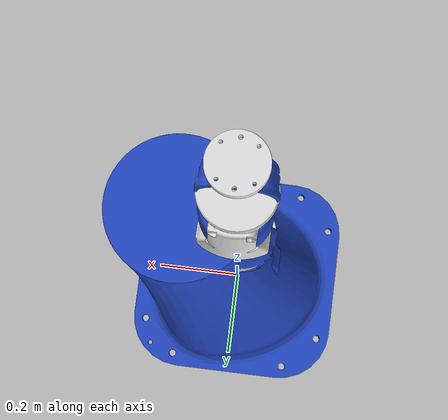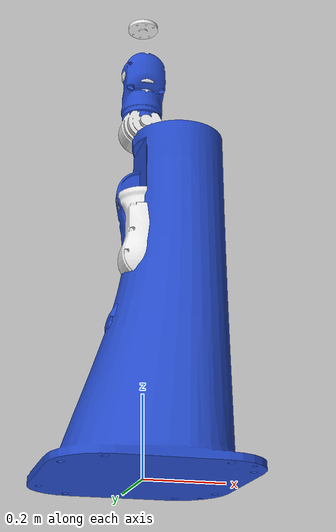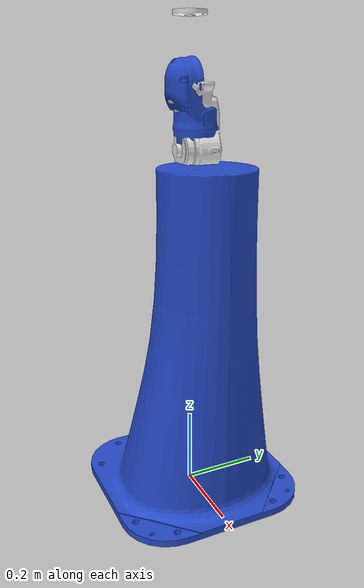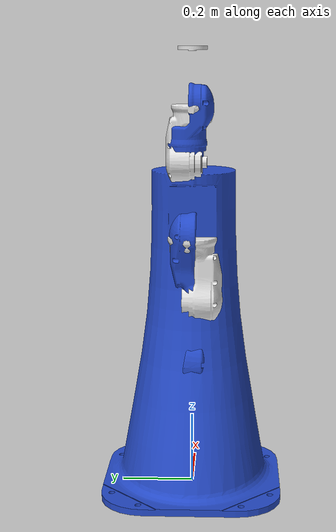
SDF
<!-- automatically generated with gzsdf sia10d.urdf > sia10d.sdf -->
<sdf version='1.4'>
  <model name='motoman_sia10d'>
    <link name='base_link'>
      <pose>0 0 0 0 -0 0</pose>
      <inertial>
        <pose>0 0 0 0 -0 0</pose>
        <mass>400</mass>
        <inertia>
          <ixx>1</ixx>
          <ixy>0</ixy>
          <ixz>0</ixz>
          <iyy>1</iyy>
          <iyz>0</iyz>
          <izz>1</izz>
        </inertia>
      </inertial>
      <collision name='base_link_collision'>
        <pose>0 0 0 0 -0 0</pose>
        <geometry>
          <mesh>
            <scale>1 1 1</scale>
            <uri>file://meshes/sia10d/collision/MOTOMAN_BASE.stl</uri>
          </mesh>
        </geometry>
        <surface>
          <contact>
            <ode/>
          </contact>
          <friction>
            <ode/>
          </friction>
        </surface>
      </collision>
      <visual name='base_link_visual'>
        <pose>0 0 0 0 -0 0</pose>
        <geometry>
          <mesh>
            <scale>1 1 1</scale>
            <uri>file://meshes/sia10d/visual/MOTOMAN_BASE.stl</uri>
          </mesh>
        </geometry>
        <material>
          <script>
            <name>Gazebo/Blue</name>
            <uri>__default__</uri>
          </script>
        </material>
      </visual>
      <gravity>1</gravity>
      <velocity_decay>
        <linear>0</linear>
        <angular>0</angular>
      </velocity_decay>
      <self_collide>1</self_collide>
    </link>
    <joint name='world-base' type='revolute'>
      <child>base_link</child>
      <parent>world</parent>
      <axis>
        <limit>
          <lower>0</lower>
          <upper>0</upper>
        </limit>
        <dynamics>
          <damping>0</damping>
        </dynamics>
        <xyz>0 0 1</xyz>
      </axis>
    </joint>
    <link name='link_s'>
      <pose>0 0 0.36 0 -0 0</pose>
      <inertial>
        <pose>0 0.00464519 -0.0189763 0 -0 0</pose>
        <mass>13.7461</mass>
        <inertia>
          <ixx>0.0700278</ixx>
          <ixy>0</ixy>
          <ixz>0</ixz>
          <iyy>0.0778083</iyy>
          <iyz>0</iyz>
          <izz>0.0436547</izz>
        </inertia>
      </inertial>
      <collision name='link_s_collision'>
        <pose>0 0 0 0 -0 0</pose>
        <geometry>
          <mesh>
            <scale>1 1 1</scale>
            <uri>file://meshes/sia10d/collision/MOTOMAN_AXIS_S.stl</uri>
          </mesh>
        </geometry>
        <surface>
          <contact>
            <ode/>
          </contact>
          <friction>
            <ode/>
          </friction>
        </surface>
      </collision>
      <visual name='link_s_visual'>
        <pose>0 0 0 0 -0 0</pose>
        <geometry>
          <mesh>
            <scale>1 1 1</scale>
            <uri>file://meshes/sia10d/visual/MOTOMAN_AXIS_S.stl</uri>
          </mesh>
        </geometry>
        <material>
          <script>
            <name>Gazebo/White</name>
            <uri>__default__</uri>
          </script>
        </material>
      </visual>
      <gravity>1</gravity>
      <velocity_decay>
        <linear>0</linear>
        <angular>0</angular>
      </velocity_decay>
      <self_collide>1</self_collide>
    </link>
    <joint name='joint_s' type='revolute'>
      <child>link_s</child>
      <parent>base_link</parent>
      <axis>
        <xyz>0 0 1</xyz>
        <limit>
          <lower>-3.1416</lower>
          <upper>3.1416</upper>
          <effort>100</effort>
          <velocity>2.96</velocity>
        </limit>
        <dynamics/>
      </axis>
    </joint>
    <link name='link_l'>
      <pose>0 0 0.36 0 -0 0</pose>
      <inertial>
        <pose>0.114221 0 0.0189351 0 -0 0</pose>
        <mass>5.228</mass>
        <inertia>
          <ixx>0.0160634</ixx>
          <ixy>0</ixy>
          <ixz>0</ixz>
          <iyy>0.105229</iyy>
          <iyz>0</iyz>
          <izz>0.102509</izz>
        </inertia>
      </inertial>
      <collision name='link_l_collision'>
        <pose>0 0 0 -1.57159 -7.34641e-06 -3.14159</pose>
        <geometry>
          <mesh>
            <scale>1 1 1</scale>
            <uri>file://meshes/sia10d/collision/MOTOMAN_AXIS_L.stl</uri>
          </mesh>
        </geometry>
        <surface>
          <contact>
            <ode/>
          </contact>
          <friction>
            <ode/>
          </friction>
        </surface>
      </collision>
      <visual name='link_l_visual'>
        <pose>0 0 0 -1.57159 -7.34641e-06 -3.14159</pose>
        <geometry>
          <mesh>
            <scale>1 1 1</scale>
            <uri>file://meshes/sia10d/visual/MOTOMAN_AXIS_L.stl</uri>
          </mesh>
        </geometry>
        <material>
          <script>
            <name>Gazebo/Blue</name>
            <uri>__default__</uri>
          </script>
        </material>
      </visual>
      <gravity>1</gravity>
      <velocity_decay>
        <linear>0</linear>
        <angular>0</angular>
      </velocity_decay>
      <self_collide>1</self_collide>
    </link>
    <joint name='joint_l' type='revolute'>
      <child>link_l</child>
      <parent>link_s</parent>
      <axis>
        <xyz>0 1 0</xyz>
        <limit>
          <lower>-1.91</lower>
          <upper>1.91</upper>
          <effort>100</effort>
          <velocity>2.96</velocity>
        </limit>
        <dynamics/>
      </axis>
    </joint>
    <link name='link_e'>
      <pose>0 0 0.72 0 -0 0</pose>
      <inertial>
        <pose>0 -0.011901 -0.036024 0 -0 0</pose>
        <mass>4.7092</mass>
        <inertia>
          <ixx>0.0301903</ixx>
          <ixy>0</ixy>
          <ixz>0</ixz>
          <iyy>0.0309433</iyy>
          <iyz>0</iyz>
          <izz>0.00967602</izz>
        </inertia>
      </inertial>
      <collision name='link_e_collision'>
        <pose>0 0 0 0 -0 3.1415</pose>
        <geometry>
          <mesh>
            <scale>1 1 1</scale>
            <uri>file://meshes/sia10d/collision/MOTOMAN_AXIS_E.stl</uri>
          </mesh>
        </geometry>
        <surface>
          <contact>
            <ode/>
          </contact>
          <friction>
            <ode/>
          </friction>
        </surface>
      </collision>
      <visual name='link_e_visual'>
        <pose>0 0 0 0 -0 3.1415</pose>
        <geometry>
          <mesh>
            <scale>1 1 1</scale>
            <uri>file://meshes/sia10d/visual/MOTOMAN_AXIS_E.stl</uri>
          </mesh>
        </geometry>
        <material>
          <script>
            <name>Gazebo/White</name>
            <uri>__default__</uri>
          </script>
        </material>
      </visual>
      <gravity>1</gravity>
      <velocity_decay>
        <linear>0</linear>
        <angular>0</angular>
      </velocity_decay>
      <self_collide>1</self_collide>
    </link>
    <joint name='joint_e' type='revolute'>
      <child>link_e</child>
      <parent>link_l</parent>
      <axis>
        <xyz>0 0 1</xyz>
        <limit>
          <lower>-2.96</lower>
          <upper>2.96</upper>
          <effort>100</effort>
          <velocity>2.96</velocity>
        </limit>
        <dynamics/>
      </axis>
    </joint>
    <link name='link_u'>
      <pose>0 0 0.72 0 -0 0</pose>
      <inertial>
        <pose>0 -0.0156594 0.135258 0 -0 0</pose>
        <mass>3.14886</mass>
        <inertia>
          <ixx>0.0838401</ixx>
          <ixy>0</ixy>
          <ixz>0</ixz>
          <iyy>0.00616419</iyy>
          <iyz>0</iyz>
          <izz>0.0832918</izz>
        </inertia>
      </inertial>
      <collision name='link_u_collision'>
        <pose>0 0 0 -1.57159 -9.26536e-05 3.14159</pose>
        <geometry>
          <mesh>
            <scale>1 1 1</scale>
            <uri>file://meshes/sia10d/collision/MOTOMAN_AXIS_U.stl</uri>
          </mesh>
        </geometry>
        <surface>
          <contact>
            <ode/>
          </contact>
          <friction>
            <ode/>
          </friction>
        </surface>
      </collision>
      <visual name='link_u_visual'>
        <pose>0 0 0 -1.57159 -9.26536e-05 3.14159</pose>
        <geometry>
          <mesh>
            <scale>1 1 1</scale>
            <uri>file://meshes/sia10d/visual/MOTOMAN_AXIS_U.stl</uri>
          </mesh>
        </geometry>
        <material>
          <script>
            <name>Gazebo/Blue</name>
            <uri>__default__</uri>
          </script>
        </material>
      </visual>
      <gravity>1</gravity>
      <velocity_decay>
        <linear>0</linear>
        <angular>0</angular>
      </velocity_decay>
      <self_collide>1</self_collide>
    </link>
    <joint name='joint_u' type='revolute'>
      <child>link_u</child>
      <parent>link_e</parent>
      <axis>
        <xyz>0 -1 0</xyz>
        <limit>
          <lower>-2.35</lower>
          <upper>2.35</upper>
          <effort>100</effort>
          <velocity>2.96</velocity>
        </limit>
        <dynamics/>
      </axis>
    </joint>
    <link name='link_r'>
      <pose>0 0 1.08 0 -0 0</pose>
      <inertial>
        <pose>0 -0.0112718 -0.0416 0 -0 0</pose>
        <mass>3.02709</mass>
        <inertia>
          <ixx>0.0174711</ixx>
          <ixy>0</ixy>
          <ixz>0</ixz>
          <iyy>0.0171753</iyy>
          <iyz>0</iyz>
          <izz>0.00490088</izz>
        </inertia>
      </inertial>
      <collision name='link_r_collision'>
        <pose>0 0 0 0 -0 -3.14159</pose>
        <geometry>
          <mesh>
            <scale>1 1 1</scale>
            <uri>file://meshes/sia10d/collision/MOTOMAN_AXIS_R.stl</uri>
          </mesh>
        </geometry>
        <surface>
          <contact>
            <ode/>
          </contact>
          <friction>
            <ode/>
          </friction>
        </surface>
      </collision>
      <visual name='link_r_visual'>
        <pose>0 0 0 0 -0 -3.14159</pose>
        <geometry>
          <mesh>
            <scale>1 1 1</scale>
            <uri>file://meshes/sia10d/visual/MOTOMAN_AXIS_R.stl</uri>
          </mesh>
        </geometry>
        <material>
          <script>
            <name>Gazebo/White</name>
            <uri>__default__</uri>
          </script>
        </material>
      </visual>
      <gravity>1</gravity>
      <velocity_decay>
        <linear>0</linear>
        <angular>0</angular>
      </velocity_decay>
      <self_collide>1</self_collide>
    </link>
    <joint name='joint_r' type='revolute'>
      <child>link_r</child>
      <parent>link_u</parent>
      <axis>
        <xyz>0 0 -1</xyz>
        <limit>
          <lower>-3.1416</lower>
          <upper>3.1416</upper>
          <effort>100</effort>
          <velocity>3.48</velocity>
        </limit>
        <dynamics/>
      </axis>
    </joint>
    <link name='link_b'>
      <pose>0 0 1.08 0 -0 0</pose>
      <inertial>
        <pose>0 0.00743641 0.0787213 0 -0 0</pose>
        <mass>2.3903</mass>
        <inertia>
          <ixx>0.08</ixx>
          <ixy>0</ixy>
          <ixz>0</ixz>
          <iyy>0.00383774</iyy>
          <iyz>0</iyz>
          <izz>0.08</izz>
        </inertia>
      </inertial>
      <collision name='link_b_collision'>
        <pose>0 0 0 -1.57 -6.08702e-22 -3.14159</pose>
        <geometry>
          <mesh>
            <scale>1 1 1</scale>
            <uri>file://meshes/sia10d/collision/MOTOMAN_AXIS_B.stl</uri>
          </mesh>
        </geometry>
        <surface>
          <contact>
            <ode/>
          </contact>
          <friction>
            <ode/>
          </friction>
        </surface>
      </collision>
      <visual name='link_b_visual'>
        <pose>0 0 0 -1.57 -6.08702e-22 -3.14159</pose>
        <geometry>
          <mesh>
            <scale>1 1 1</scale>
            <uri>file://meshes/sia10d/visual/MOTOMAN_AXIS_B.stl</uri>
          </mesh>
        </geometry>
        <material>
          <script>
            <name>Gazebo/Blue</name>
            <uri>__default__</uri>
          </script>
        </material>
      </visual>
      <gravity>1</gravity>
      <velocity_decay>
        <linear>0</linear>
        <angular>0</angular>
      </velocity_decay>
      <self_collide>1</self_collide>
    </link>
    <joint name='joint_b' type='revolute'>
      <child>link_b</child>
      <parent>link_r</parent>
      <axis>
        <xyz>0 -1 0</xyz>
        <limit>
          <lower>-1.91</lower>
          <upper>1.91</upper>
          <effort>100</effort>
          <velocity>3.48</velocity>
        </limit>
        <dynamics/>
      </axis>
    </joint>
    <link name='link_t'>
      <pose>0 0 1.235 0 -0 0</pose>
      <inertial>
        <pose>0 0 0 0 -0 0</pose>
        <mass>0.636704</mass>
        <inertia>
          <ixx>0.000584712</ixx>
          <ixy>0</ixy>
          <ixz>0</ixz>
          <iyy>0.000592967</iyy>
          <iyz>0</iyz>
          <izz>0.00108139</izz>
        </inertia>
      </inertial>
      <collision name='link_t_collision'>
        <pose>0 0 0 0 -0 0</pose>
        <geometry>
          <mesh>
            <scale>1 1 1</scale>
            <uri>file://meshes/sia10d/collision/MOTOMAN_AXIS_T.stl</uri>
          </mesh>
        </geometry>
        <surface>
          <contact>
            <ode/>
          </contact>
          <friction>
            <ode/>
          </friction>
        </surface>
      </collision>
      <visual name='link_t_visual'>
        <pose>0 0 0 0 -0 0</pose>
        <geometry>
          <mesh>
            <scale>1 1 1</scale>
            <uri>file://meshes/sia10d/visual/MOTOMAN_AXIS_T.stl</uri>
          </mesh>
        </geometry>
        <material>
          <script>
            <name>Gazebo/White</name>
            <uri>__default__</uri>
          </script>
        </material>
      </visual>
      <gravity>1</gravity>
      <velocity_decay>
        <linear>0</linear>
        <angular>0</angular>
      </velocity_decay>
      <self_collide>1</self_collide>
    </link>
    <joint name='joint_t' type='revolute'>
      <child>link_t</child>
      <parent>link_b</parent>
      <axis>
        <xyz>0 0 -1</xyz>
        <limit>
          <lower>-3.1416</lower>
          <upper>3.1416</upper>
          <effort>100</effort>
          <velocity>6.97</velocity>
        </limit>
        <dynamics/>
      </axis>
    </joint>
  </model>
</sdf>
